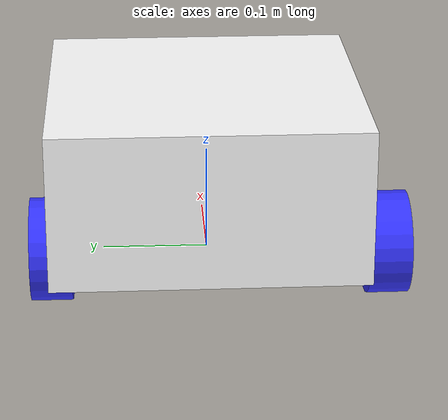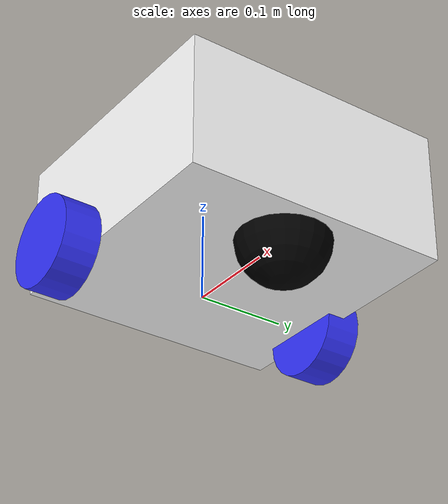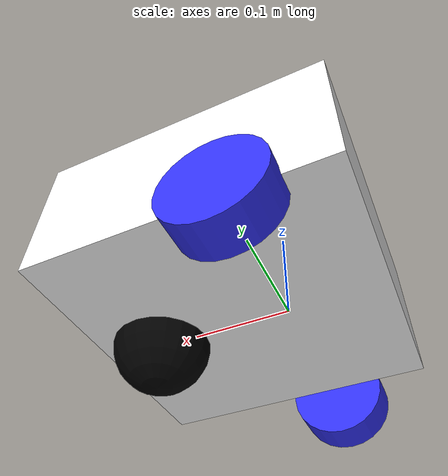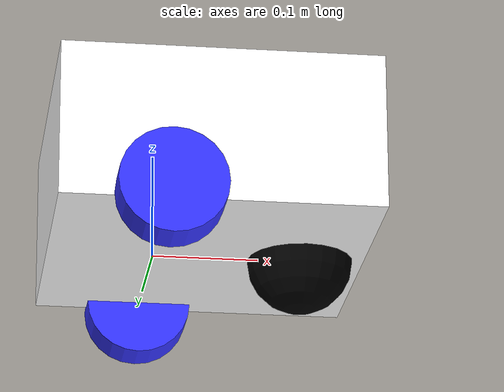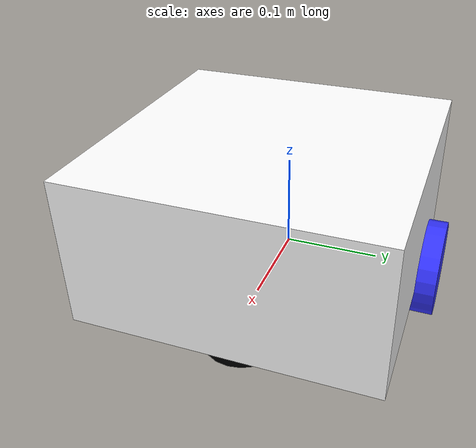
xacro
<?xml version="1.0"?>
<robot xmlns:xacro="http://www.ros.org/wiki/xacro">
    <xacro:include filename="inertial_macros.xacro"/>

    <material name = "white">
        <color rgba="1 1 1 1"/>
    </material>

    <material name="orange">
        <color rgba="1.0 0.3 0.1 1"/>
    </material>

    <material name="blue">
        <color rgba="0.2 0.2 1.0 1.0"/>
    </material>

    <material name="black">
        <color rgba="0.0 0.0 0.0 1.0"/>
    </material>

    <!--base linl-->
    <link name="base_link">

    </link>

    <joint name="chassis_joint" type="fixed">
        <parent link="base_link"/>
        <child link="chassis"/>
        <origin xyz="-0.1 0.0 0.0"/>
    </joint>

    <link name="chassis">
        <visual>
            <origin xyz="0.15 0.0 0.075" rpy="0.0 0.0 0.0"/>
            <geometry>
                <box size="0.3 0.3 0.15"/>
            </geometry>
            <material name="white"/>
        </visual>

        <collison>
            <origin xyz="0.15 0.0 0.075" rpy="0.0 0.0 0.0"/>
            <geometry>
                <box size="0.3 0.3 0.15"/>
            </geometry>
        </collison>

        <xacro:inertial_box mass="0.5" x="0.3" y="0.3" z="0.15">
            <origin xyz="0.15 0 0.075" rpy="0 0 0"/>
        </xacro:inertial_box>

    </link>

    <!--left wheel joint-->
    <joint name="left_wheel_joint" type="continuous">
        <origin xyz="0.0 0.15 0.0" rpy="-${pi/2} 0.0 0.0"/>
        <parent link="base_link"/>
        <child link="left_wheel"/>
        <axis xyz="0.0 0.0 1"/>
    </joint>

    <link name="left_wheel">
        <visual>
            <geometry>
                <cylinder radius="0.05" length="0.04"/>
            </geometry>
            <material name = "blue"/>
        </visual>

        <collison>
            <geometry>
                <cylinder radius="0.05" length="0.04"/>
            </geometry>
        </collison>

        <xacro:inertial_cylinder mass="0.1" length="0.04" radius="0.05">
            <origin xyz="0 0 0" rpy="0 0 0"/>
        </xacro:inertial_cylinder>

    </link>

        <!--right wheel joint-->
    <joint name="right_wheel_joint" type="continuous">
        <origin xyz="0.0 -0.175 0.0" rpy="${pi/2} 0.0 0.0"/>
        <parent link="base_link"/>
        <child link="right_wheel"/>
        <axis xyz="0.0 0.0 -1"/>
    </joint>

    <link name="right_wheel">
        <visual>
            <geometry>
                <cylinder radius="0.05" length="0.04"/>
            </geometry>
            <material name = "blue"/>
        </visual>

        <collison>
            <geometry>
                <cylinder radius="0.05" length="0.04"/>
            </geometry>
        </collison>

        <xacro:inertial_cylinder mass="0.1" length="0.04" radius="0.05">
            <origin xyz="0 0 0" rpy="0 0 0"/>
        </xacro:inertial_cylinder>

    </link>

    <joint name="caster_wheel_joint" type="fixed">
        <parent link="chassis"/>
        <child link="caster_wheel"/>
        <origin xyz = "0.24 0 0"/>
    </joint>

    <link name="caster_wheel">
        <visual>
            <geometry>
                <sphere radius="0.05"/>
            </geometry>
            <material name="black">
            </material>
        </visual>

        <collison>
            <geometry>
                <sphere radius="0.05"/>
            </geometry>
        </collison>

        <xacro:inertial_sphere mass="0.1" radius="0.05">
            <origin xyz="0 0 0" rpy="0 0 0"/>
        </xacro:inertial_sphere>

    </link>

</robot>
